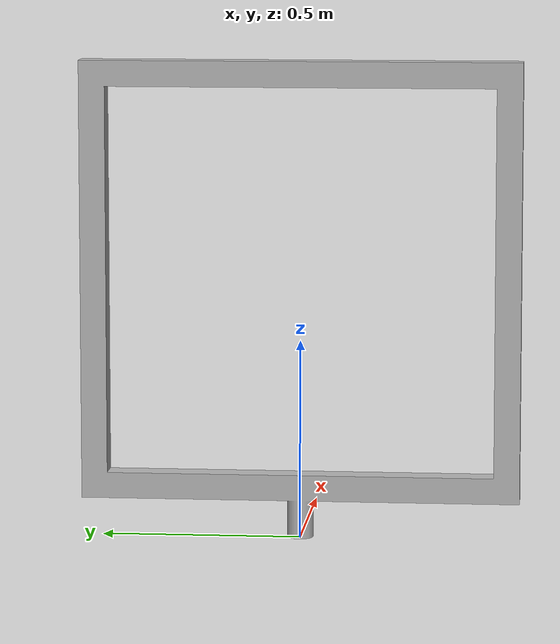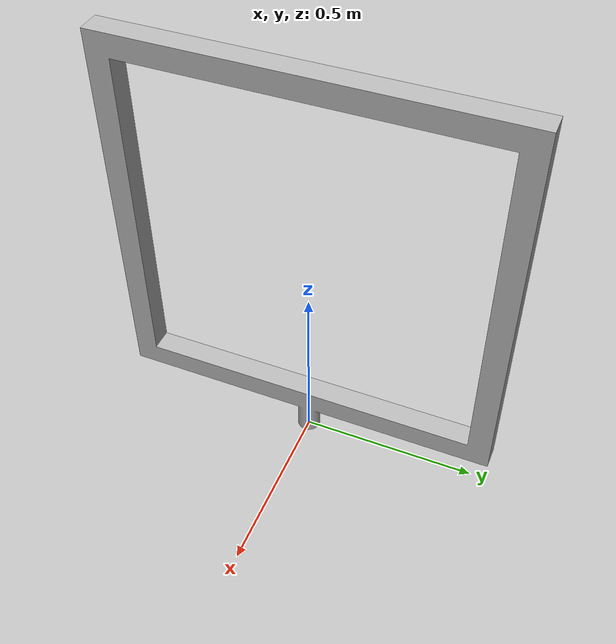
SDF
<?xml version="1.0"?>
<sdf version="1.5">
    <model name="frame_1">
        <static>true</static>
        <link name="link">
            <collision name="collision1">
                <pose>0 0 0 0 0 0</pose>
                <geometry>
                    <mesh>
                        <uri>model://frame_1/meshes/frame_1.stl</uri>
                    </mesh>
                </geometry>
            </collision>
            <visual name="visual1">

              <pose>0 0 0 0 0 0</pose>
              <geometry>
              <mesh>
                 <uri>model://frame_1/meshes/frame_1.dae</uri>
              </mesh>
              </geometry>

              <material>
                  <script>
                      <uri>model://frame_1/materials/scripts</uri>
                      <uri>model://frame_1/materials/textures</uri>
                      <name>frameMat/Diffuse</name>
                  </script>
              </material>
             </visual>

        </link>
    </model>
</sdf>
